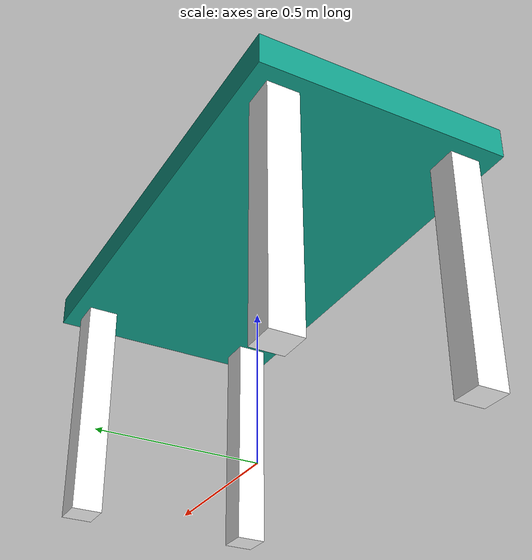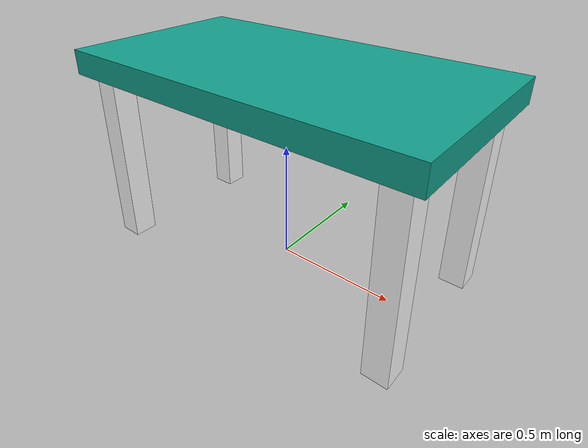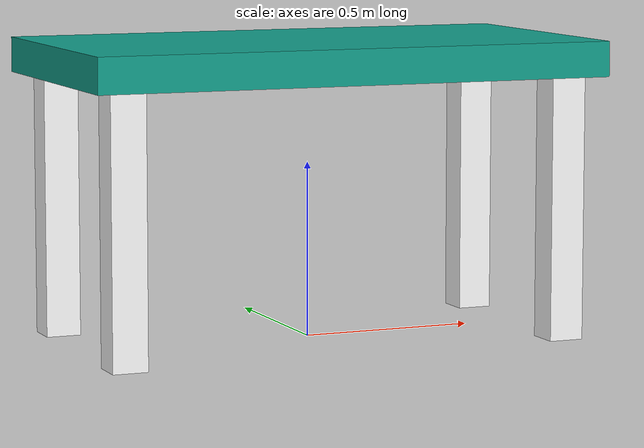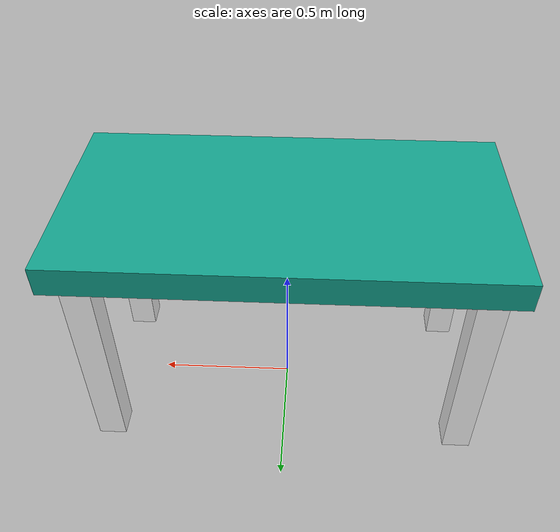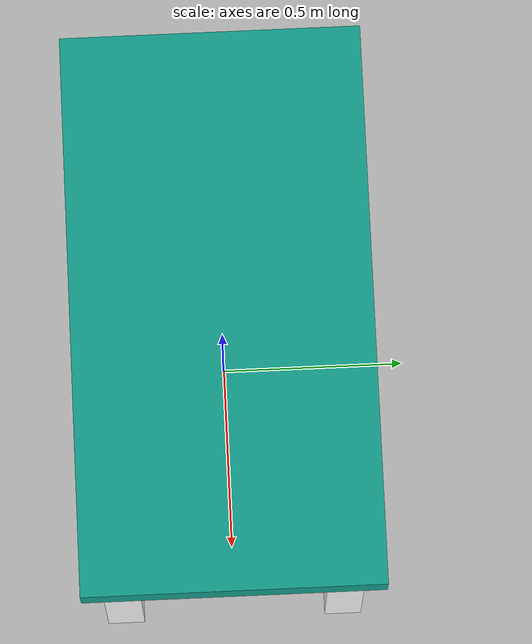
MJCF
<mujoco>
  <!-- 模型元数据 -->
  <option timestep="0.01" integrator="RK4"/>
  <compiler angle="radian" coordinate="local" meshdir="."/>

  <asset>
    <!-- 材质定义 -->
    <material name="green" rgba="0.0745 0.6353 0.5568 1"/>  <!-- 绿色桌面 -->
    <material name="white" rgba="1 1 1 1"/>  <!-- 白色桌脚 -->
  </asset>

  <!-- 物理世界主体 -->
  <worldbody>
    <!-- 桌面 - 绿色立方体 -->
    <body name="table_top" pos="0 0 0.8">
      <geom name="top_geom" type="box" size="0.75 0.4 0.05" material="green"/>
    </body>

    <!-- 桌脚1 - 左下角 -->
    <body name="leg1" pos="-0.65 0.3 0.4">
      <geom name="leg1_geom" type="box" size="0.05 0.05 0.4" material="white"/>
    </body>

    <!-- 桌脚2 - 右下角 -->
    <body name="leg2" pos="0.65 0.3 0.4">
      <geom name="leg2_geom" type="box" size="0.05 0.05 0.4" material="white"/>
    </body>

    <!-- 桌脚3 - 左上角 -->
    <body name="leg3" pos="-0.65 -0.3 0.4">
      <geom name="leg3_geom" type="box" size="0.05 0.05 0.4" material="white"/>
    </body>

    <!-- 桌脚4 - 右上角 -->
    <body name="leg4" pos="0.65 -0.3 0.4">
      <geom name="leg4_geom" type="box" size="0.05 0.05 0.4" material="white"/>
    </body>
  </worldbody>

  <!-- 可视化设置 - 建议放在physics之后或worldbody之后 -->
  <visual>
    <headlight diffuse="0.8 0.8 0.8" specular="0.5 0.5 0.5"/>
    <map fogstart="10" fogend="100"/>
  </visual>

</mujoco>
